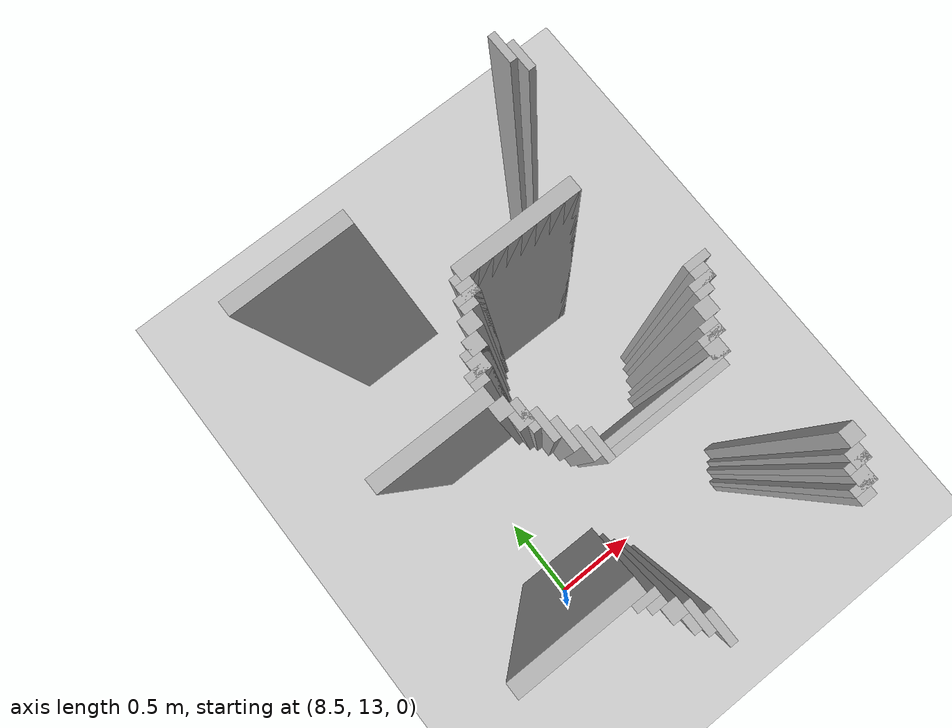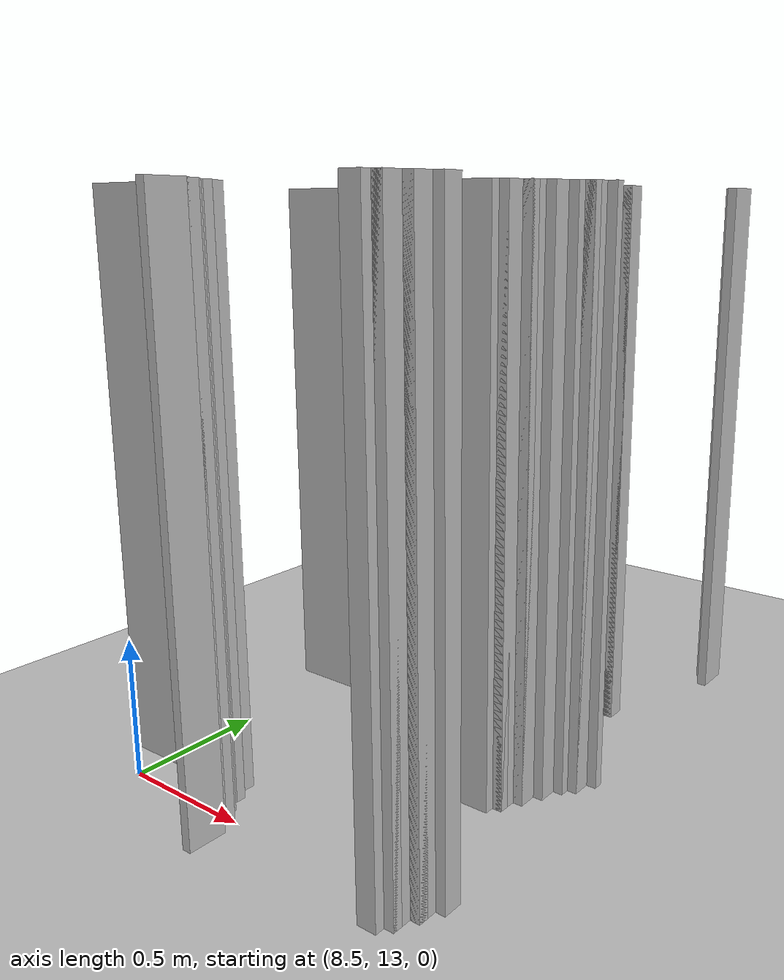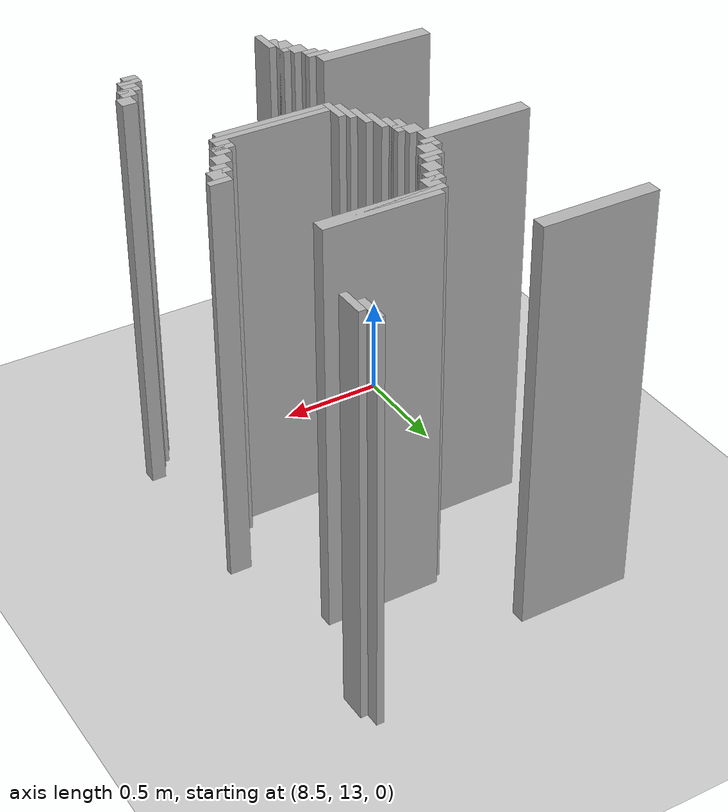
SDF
<sdf version="1.6">
 <world name="slam_world">
  <model name="ground_plane">
   <static>true</static>
   <link name="link">
    <collision name="collision">
     <geometry><plane><normal>0 0 1</normal><size>100 100</size></plane></geometry>
    </collision>
    <visual name="visual">
     <geometry><plane><normal>0 0 1</normal><size>100 100</size></plane></geometry>
     <material>
      <ambient>0.8 0.8 0.8 1</ambient>
      <diffuse>0.8 0.8 0.8 1</diffuse>
      <specular>0.8 0.8 0.8 1</specular>
     </material>
    </visual>
   </link>
  </model>
  <model name="wall_792">
   <static>true</static>
   <pose>9.72737819025522 15.0 1.0 0 0 0</pose>
   <link name="link">
    <collision name="collision">
     <geometry><box><size>0.03480278422273782 0.13921113689095127 2.0</size></box></geometry>
    </collision>
    <visual name="visual">
     <geometry><box><size>0.03480278422273782 0.13921113689095127 2.0</size></box></geometry>
     <material><ambient>0.5 0.5 0.5 1</ambient><diffuse>0.7 0.7 0.7 1</diffuse></material>
    </visual>
   </link>
  </model>
  <model name="wall_813">
   <static>true</static>
   <pose>9.762180974477959 14.930394431554523 1.0 0 0 0</pose>
   <link name="link">
    <collision name="collision">
     <geometry><box><size>0.03480278422273782 0.13921113689095127 2.0</size></box></geometry>
    </collision>
    <visual name="visual">
     <geometry><box><size>0.03480278422273782 0.13921113689095127 2.0</size></box></geometry>
     <material><ambient>0.5 0.5 0.5 1</ambient><diffuse>0.7 0.7 0.7 1</diffuse></material>
    </visual>
   </link>
  </model>
  <model name="wall_851">
   <static>true</static>
   <pose>8.596287703016241 14.825986078886311 1.0 0 0 0</pose>
   <link name="link">
    <collision name="collision">
     <geometry><box><size>0.5568445475638051 0.06960556844547564 2.0</size></box></geometry>
    </collision>
    <visual name="visual">
     <geometry><box><size>0.5568445475638051 0.06960556844547564 2.0</size></box></geometry>
     <material><ambient>0.5 0.5 0.5 1</ambient><diffuse>0.7 0.7 0.7 1</diffuse></material>
    </visual>
   </link>
  </model>
  <model name="wall_971">
   <static>true</static>
   <pose>9.327146171693736 14.408352668213457 1.0 0 0 0</pose>
   <link name="link">
    <collision name="collision">
     <geometry><box><size>0.5568445475638051 0.06960556844547564 2.0</size></box></geometry>
    </collision>
    <visual name="visual">
     <geometry><box><size>0.5568445475638051 0.06960556844547564 2.0</size></box></geometry>
     <material><ambient>0.5 0.5 0.5 1</ambient><diffuse>0.7 0.7 0.7 1</diffuse></material>
    </visual>
   </link>
  </model>
  <model name="wall_985">
   <static>true</static>
   <pose>9.309744779582367 14.390951276102088 1.0 0 0 0</pose>
   <link name="link">
    <collision name="collision">
     <geometry><box><size>0.5916473317865429 0.03480278422273782 2.0</size></box></geometry>
    </collision>
    <visual name="visual">
     <geometry><box><size>0.5916473317865429 0.03480278422273782 2.0</size></box></geometry>
     <material><ambient>0.5 0.5 0.5 1</ambient><diffuse>0.7 0.7 0.7 1</diffuse></material>
    </visual>
   </link>
  </model>
  <model name="wall_1000">
   <static>true</static>
   <pose>9.048723897911833 14.33874709976798 1.0 0 0 0</pose>
   <link name="link">
    <collision name="collision">
     <geometry><box><size>0.06960556844547564 0.06960556844547564 2.0</size></box></geometry>
    </collision>
    <visual name="visual">
     <geometry><box><size>0.06960556844547564 0.06960556844547564 2.0</size></box></geometry>
     <material><ambient>0.5 0.5 0.5 1</ambient><diffuse>0.7 0.7 0.7 1</diffuse></material>
    </visual>
   </link>
  </model>
  <model name="wall_1015">
   <static>true</static>
   <pose>9.031322505800464 14.321345707656612 1.0 0 0 0</pose>
   <link name="link">
    <collision name="collision">
     <geometry><box><size>0.10440835266821345 0.03480278422273782 2.0</size></box></geometry>
    </collision>
    <visual name="visual">
     <geometry><box><size>0.10440835266821345 0.03480278422273782 2.0</size></box></geometry>
     <material><ambient>0.5 0.5 0.5 1</ambient><diffuse>0.7 0.7 0.7 1</diffuse></material>
    </visual>
   </link>
  </model>
  <model name="wall_1027">
   <static>true</static>
   <pose>9.013921113689095 14.286542923433874 1.0 0 0 0</pose>
   <link name="link">
    <collision name="collision">
     <geometry><box><size>0.06960556844547564 0.03480278422273782 2.0</size></box></geometry>
    </collision>
    <visual name="visual">
     <geometry><box><size>0.06960556844547564 0.03480278422273782 2.0</size></box></geometry>
     <material><ambient>0.5 0.5 0.5 1</ambient><diffuse>0.7 0.7 0.7 1</diffuse></material>
    </visual>
   </link>
  </model>
  <model name="wall_1039">
   <static>true</static>
   <pose>8.979118329466356 14.234338747099768 1.0 0 0 0</pose>
   <link name="link">
    <collision name="collision">
     <geometry><box><size>0.06960556844547564 0.06960556844547564 2.0</size></box></geometry>
    </collision>
    <visual name="visual">
     <geometry><box><size>0.06960556844547564 0.06960556844547564 2.0</size></box></geometry>
     <material><ambient>0.5 0.5 0.5 1</ambient><diffuse>0.7 0.7 0.7 1</diffuse></material>
    </visual>
   </link>
  </model>
  <model name="wall_1054">
   <static>true</static>
   <pose>8.944315545243619 14.164733178654291 1.0 0 0 0</pose>
   <link name="link">
    <collision name="collision">
     <geometry><box><size>0.06960556844547564 0.06960556844547564 2.0</size></box></geometry>
    </collision>
    <visual name="visual">
     <geometry><box><size>0.06960556844547564 0.06960556844547564 2.0</size></box></geometry>
     <material><ambient>0.5 0.5 0.5 1</ambient><diffuse>0.7 0.7 0.7 1</diffuse></material>
    </visual>
   </link>
  </model>
  <model name="wall_1069">
   <static>true</static>
   <pose>8.92691415313225 14.147331786542923 1.0 0 0 0</pose>
   <link name="link">
    <collision name="collision">
     <geometry><box><size>0.10440835266821345 0.03480278422273782 2.0</size></box></geometry>
    </collision>
    <visual name="visual">
     <geometry><box><size>0.10440835266821345 0.03480278422273782 2.0</size></box></geometry>
     <material><ambient>0.5 0.5 0.5 1</ambient><diffuse>0.7 0.7 0.7 1</diffuse></material>
    </visual>
   </link>
  </model>
  <model name="wall_1080">
   <static>true</static>
   <pose>8.909512761020881 14.095127610208817 1.0 0 0 0</pose>
   <link name="link">
    <collision name="collision">
     <geometry><box><size>0.06960556844547564 0.06960556844547564 2.0</size></box></geometry>
    </collision>
    <visual name="visual">
     <geometry><box><size>0.06960556844547564 0.06960556844547564 2.0</size></box></geometry>
     <material><ambient>0.5 0.5 0.5 1</ambient><diffuse>0.7 0.7 0.7 1</diffuse></material>
    </visual>
   </link>
  </model>
  <model name="wall_1092">
   <static>true</static>
   <pose>8.892111368909513 14.077726218097448 1.0 0 0 0</pose>
   <link name="link">
    <collision name="collision">
     <geometry><box><size>0.10440835266821345 0.03480278422273782 2.0</size></box></geometry>
    </collision>
    <visual name="visual">
     <geometry><box><size>0.10440835266821345 0.03480278422273782 2.0</size></box></geometry>
     <material><ambient>0.5 0.5 0.5 1</ambient><diffuse>0.7 0.7 0.7 1</diffuse></material>
    </visual>
   </link>
  </model>
  <model name="wall_1103">
   <static>true</static>
   <pose>8.874709976798144 14.042923433874709 1.0 0 0 0</pose>
   <link name="link">
    <collision name="collision">
     <geometry><box><size>0.06960556844547564 0.03480278422273782 2.0</size></box></geometry>
    </collision>
    <visual name="visual">
     <geometry><box><size>0.06960556844547564 0.03480278422273782 2.0</size></box></geometry>
     <material><ambient>0.5 0.5 0.5 1</ambient><diffuse>0.7 0.7 0.7 1</diffuse></material>
    </visual>
   </link>
  </model>
  <model name="wall_1113">
   <static>true</static>
   <pose>8.61368909512761 13.990719257540603 1.0 0 0 0</pose>
   <link name="link">
    <collision name="collision">
     <geometry><box><size>0.5220417633410672 0.06960556844547564 2.0</size></box></geometry>
    </collision>
    <visual name="visual">
     <geometry><box><size>0.5220417633410672 0.06960556844547564 2.0</size></box></geometry>
     <material><ambient>0.5 0.5 0.5 1</ambient><diffuse>0.7 0.7 0.7 1</diffuse></material>
    </visual>
   </link>
  </model>
  <model name="wall_1129">
   <static>true</static>
   <pose>8.874709976798144 13.921113689095128 1.0 0 0 0</pose>
   <link name="link">
    <collision name="collision">
     <geometry><box><size>0.06960556844547564 0.06960556844547564 2.0</size></box></geometry>
    </collision>
    <visual name="visual">
     <geometry><box><size>0.06960556844547564 0.06960556844547564 2.0</size></box></geometry>
     <material><ambient>0.5 0.5 0.5 1</ambient><diffuse>0.7 0.7 0.7 1</diffuse></material>
    </visual>
   </link>
  </model>
  <model name="wall_1144">
   <static>true</static>
   <pose>8.92691415313225 13.851508120649651 1.0 0 0 0</pose>
   <link name="link">
    <collision name="collision">
     <geometry><box><size>0.03480278422273782 0.13921113689095127 2.0</size></box></geometry>
    </collision>
    <visual name="visual">
     <geometry><box><size>0.03480278422273782 0.13921113689095127 2.0</size></box></geometry>
     <material><ambient>0.5 0.5 0.5 1</ambient><diffuse>0.7 0.7 0.7 1</diffuse></material>
    </visual>
   </link>
  </model>
  <model name="wall_1145">
   <static>true</static>
   <pose>9.762180974477959 13.903712296983759 1.0 0 0 0</pose>
   <link name="link">
    <collision name="collision">
     <geometry><box><size>0.10440835266821345 0.03480278422273782 2.0</size></box></geometry>
    </collision>
    <visual name="visual">
     <geometry><box><size>0.10440835266821345 0.03480278422273782 2.0</size></box></geometry>
     <material><ambient>0.5 0.5 0.5 1</ambient><diffuse>0.7 0.7 0.7 1</diffuse></material>
    </visual>
   </link>
  </model>
  <model name="wall_1159">
   <static>true</static>
   <pose>8.909512761020881 13.851508120649651 1.0 0 0 0</pose>
   <link name="link">
    <collision name="collision">
     <geometry><box><size>0.06960556844547564 0.06960556844547564 2.0</size></box></geometry>
    </collision>
    <visual name="visual">
     <geometry><box><size>0.06960556844547564 0.06960556844547564 2.0</size></box></geometry>
     <material><ambient>0.5 0.5 0.5 1</ambient><diffuse>0.7 0.7 0.7 1</diffuse></material>
    </visual>
   </link>
  </model>
  <model name="wall_1160">
   <static>true</static>
   <pose>9.744779582366588 13.851508120649651 1.0 0 0 0</pose>
   <link name="link">
    <collision name="collision">
     <geometry><box><size>0.06960556844547564 0.06960556844547564 2.0</size></box></geometry>
    </collision>
    <visual name="visual">
     <geometry><box><size>0.06960556844547564 0.06960556844547564 2.0</size></box></geometry>
     <material><ambient>0.5 0.5 0.5 1</ambient><diffuse>0.7 0.7 0.7 1</diffuse></material>
    </visual>
   </link>
  </model>
  <model name="wall_1174">
   <static>true</static>
   <pose>8.961716937354987 13.781902552204176 1.0 0 0 0</pose>
   <link name="link">
    <collision name="collision">
     <geometry><box><size>0.03480278422273782 0.13921113689095127 2.0</size></box></geometry>
    </collision>
    <visual name="visual">
     <geometry><box><size>0.03480278422273782 0.13921113689095127 2.0</size></box></geometry>
     <material><ambient>0.5 0.5 0.5 1</ambient><diffuse>0.7 0.7 0.7 1</diffuse></material>
    </visual>
   </link>
  </model>
  <model name="wall_1175">
   <static>true</static>
   <pose>9.72737819025522 13.834106728538282 1.0 0 0 0</pose>
   <link name="link">
    <collision name="collision">
     <geometry><box><size>0.10440835266821345 0.03480278422273782 2.0</size></box></geometry>
    </collision>
    <visual name="visual">
     <geometry><box><size>0.10440835266821345 0.03480278422273782 2.0</size></box></geometry>
     <material><ambient>0.5 0.5 0.5 1</ambient><diffuse>0.7 0.7 0.7 1</diffuse></material>
    </visual>
   </link>
  </model>
  <model name="wall_1184">
   <static>true</static>
   <pose>9.70997679814385 13.799303944315545 1.0 0 0 0</pose>
   <link name="link">
    <collision name="collision">
     <geometry><box><size>0.06960556844547564 0.03480278422273782 2.0</size></box></geometry>
    </collision>
    <visual name="visual">
     <geometry><box><size>0.06960556844547564 0.03480278422273782 2.0</size></box></geometry>
     <material><ambient>0.5 0.5 0.5 1</ambient><diffuse>0.7 0.7 0.7 1</diffuse></material>
    </visual>
   </link>
  </model>
  <model name="wall_1196">
   <static>true</static>
   <pose>8.996519721577727 13.7122969837587 1.0 0 0 0</pose>
   <link name="link">
    <collision name="collision">
     <geometry><box><size>0.03480278422273782 0.13921113689095127 2.0</size></box></geometry>
    </collision>
    <visual name="visual">
     <geometry><box><size>0.03480278422273782 0.13921113689095127 2.0</size></box></geometry>
     <material><ambient>0.5 0.5 0.5 1</ambient><diffuse>0.7 0.7 0.7 1</diffuse></material>
    </visual>
   </link>
  </model>
  <model name="wall_1197">
   <static>true</static>
   <pose>9.675174013921113 13.747099767981437 1.0 0 0 0</pose>
   <link name="link">
    <collision name="collision">
     <geometry><box><size>0.06960556844547564 0.06960556844547564 2.0</size></box></geometry>
    </collision>
    <visual name="visual">
     <geometry><box><size>0.06960556844547564 0.06960556844547564 2.0</size></box></geometry>
     <material><ambient>0.5 0.5 0.5 1</ambient><diffuse>0.7 0.7 0.7 1</diffuse></material>
    </visual>
   </link>
  </model>
  <model name="wall_1211">
   <static>true</static>
   <pose>9.031322505800464 13.642691415313225 1.0 0 0 0</pose>
   <link name="link">
    <collision name="collision">
     <geometry><box><size>0.03480278422273782 0.13921113689095127 2.0</size></box></geometry>
    </collision>
    <visual name="visual">
     <geometry><box><size>0.03480278422273782 0.13921113689095127 2.0</size></box></geometry>
     <material><ambient>0.5 0.5 0.5 1</ambient><diffuse>0.7 0.7 0.7 1</diffuse></material>
    </visual>
   </link>
  </model>
  <model name="wall_1212">
   <static>true</static>
   <pose>9.640371229698376 13.677494199535962 1.0 0 0 0</pose>
   <link name="link">
    <collision name="collision">
     <geometry><box><size>0.06960556844547564 0.06960556844547564 2.0</size></box></geometry>
    </collision>
    <visual name="visual">
     <geometry><box><size>0.06960556844547564 0.06960556844547564 2.0</size></box></geometry>
     <material><ambient>0.5 0.5 0.5 1</ambient><diffuse>0.7 0.7 0.7 1</diffuse></material>
    </visual>
   </link>
  </model>
  <model name="wall_1226">
   <static>true</static>
   <pose>9.066125290023201 13.607888631090487 1.0 0 0 0</pose>
   <link name="link">
    <collision name="collision">
     <geometry><box><size>0.03480278422273782 0.13921113689095127 2.0</size></box></geometry>
    </collision>
    <visual name="visual">
     <geometry><box><size>0.03480278422273782 0.13921113689095127 2.0</size></box></geometry>
     <material><ambient>0.5 0.5 0.5 1</ambient><diffuse>0.7 0.7 0.7 1</diffuse></material>
    </visual>
   </link>
  </model>
  <model name="wall_1227">
   <static>true</static>
   <pose>9.622969837587007 13.660092807424594 1.0 0 0 0</pose>
   <link name="link">
    <collision name="collision">
     <geometry><box><size>0.10440835266821345 0.03480278422273782 2.0</size></box></geometry>
    </collision>
    <visual name="visual">
     <geometry><box><size>0.10440835266821345 0.03480278422273782 2.0</size></box></geometry>
     <material><ambient>0.5 0.5 0.5 1</ambient><diffuse>0.7 0.7 0.7 1</diffuse></material>
    </visual>
   </link>
  </model>
  <model name="wall_1236">
   <static>true</static>
   <pose>9.605568445475638 13.607888631090487 1.0 0 0 0</pose>
   <link name="link">
    <collision name="collision">
     <geometry><box><size>0.06960556844547564 0.06960556844547564 2.0</size></box></geometry>
    </collision>
    <visual name="visual">
     <geometry><box><size>0.06960556844547564 0.06960556844547564 2.0</size></box></geometry>
     <material><ambient>0.5 0.5 0.5 1</ambient><diffuse>0.7 0.7 0.7 1</diffuse></material>
    </visual>
   </link>
  </model>
  <model name="wall_1246">
   <static>true</static>
   <pose>9.361948955916473 13.590487238979117 1.0 0 0 0</pose>
   <link name="link">
    <collision name="collision">
     <geometry><box><size>0.5568445475638051 0.03480278422273782 2.0</size></box></geometry>
    </collision>
    <visual name="visual">
     <geometry><box><size>0.5568445475638051 0.03480278422273782 2.0</size></box></geometry>
     <material><ambient>0.5 0.5 0.5 1</ambient><diffuse>0.7 0.7 0.7 1</diffuse></material>
    </visual>
   </link>
  </model>
  <model name="wall_1255">
   <static>true</static>
   <pose>9.344547563805104 13.55568445475638 1.0 0 0 0</pose>
   <link name="link">
    <collision name="collision">
     <geometry><box><size>0.5220417633410672 0.03480278422273782 2.0</size></box></geometry>
    </collision>
    <visual name="visual">
     <geometry><box><size>0.5220417633410672 0.03480278422273782 2.0</size></box></geometry>
     <material><ambient>0.5 0.5 0.5 1</ambient><diffuse>0.7 0.7 0.7 1</diffuse></material>
    </visual>
   </link>
  </model>
  <model name="wall_1360">
   <static>true</static>
   <pose>8.596287703016241 13.155452436194896 1.0 0 0 0</pose>
   <link name="link">
    <collision name="collision">
     <geometry><box><size>0.5568445475638051 0.06960556844547564 2.0</size></box></geometry>
    </collision>
    <visual name="visual">
     <geometry><box><size>0.5568445475638051 0.06960556844547564 2.0</size></box></geometry>
     <material><ambient>0.5 0.5 0.5 1</ambient><diffuse>0.7 0.7 0.7 1</diffuse></material>
    </visual>
   </link>
  </model>
  <model name="wall_1379">
   <static>true</static>
   <pose>8.857308584686775 13.103248259860788 1.0 0 0 0</pose>
   <link name="link">
    <collision name="collision">
     <geometry><box><size>0.10440835266821345 0.03480278422273782 2.0</size></box></geometry>
    </collision>
    <visual name="visual">
     <geometry><box><size>0.10440835266821345 0.03480278422273782 2.0</size></box></geometry>
     <material><ambient>0.5 0.5 0.5 1</ambient><diffuse>0.7 0.7 0.7 1</diffuse></material>
    </visual>
   </link>
  </model>
  <model name="wall_1380">
   <static>true</static>
   <pose>9.779582366589327 13.085846867749419 1.0 0 0 0</pose>
   <link name="link">
    <collision name="collision">
     <geometry><box><size>0.06960556844547564 0.06960556844547564 2.0</size></box></geometry>
    </collision>
    <visual name="visual">
     <geometry><box><size>0.06960556844547564 0.06960556844547564 2.0</size></box></geometry>
     <material><ambient>0.5 0.5 0.5 1</ambient><diffuse>0.7 0.7 0.7 1</diffuse></material>
    </visual>
   </link>
  </model>
  <model name="wall_1393">
   <static>true</static>
   <pose>8.874709976798144 13.06844547563805 1.0 0 0 0</pose>
   <link name="link">
    <collision name="collision">
     <geometry><box><size>0.06960556844547564 0.03480278422273782 2.0</size></box></geometry>
    </collision>
    <visual name="visual">
     <geometry><box><size>0.06960556844547564 0.03480278422273782 2.0</size></box></geometry>
     <material><ambient>0.5 0.5 0.5 1</ambient><diffuse>0.7 0.7 0.7 1</diffuse></material>
    </visual>
   </link>
  </model>
  <model name="wall_1406">
   <static>true</static>
   <pose>8.909512761020881 13.016241299303944 1.0 0 0 0</pose>
   <link name="link">
    <collision name="collision">
     <geometry><box><size>0.06960556844547564 0.06960556844547564 2.0</size></box></geometry>
    </collision>
    <visual name="visual">
     <geometry><box><size>0.06960556844547564 0.06960556844547564 2.0</size></box></geometry>
     <material><ambient>0.5 0.5 0.5 1</ambient><diffuse>0.7 0.7 0.7 1</diffuse></material>
    </visual>
   </link>
  </model>
  <model name="wall_1407">
   <static>true</static>
   <pose>9.744779582366588 13.016241299303944 1.0 0 0 0</pose>
   <link name="link">
    <collision name="collision">
     <geometry><box><size>0.06960556844547564 0.06960556844547564 2.0</size></box></geometry>
    </collision>
    <visual name="visual">
     <geometry><box><size>0.06960556844547564 0.06960556844547564 2.0</size></box></geometry>
     <material><ambient>0.5 0.5 0.5 1</ambient><diffuse>0.7 0.7 0.7 1</diffuse></material>
    </visual>
   </link>
  </model>
  <model name="wall_1421">
   <static>true</static>
   <pose>8.961716937354987 12.946635730858468 1.0 0 0 0</pose>
   <link name="link">
    <collision name="collision">
     <geometry><box><size>0.03480278422273782 0.13921113689095127 2.0</size></box></geometry>
    </collision>
    <visual name="visual">
     <geometry><box><size>0.03480278422273782 0.13921113689095127 2.0</size></box></geometry>
     <material><ambient>0.5 0.5 0.5 1</ambient><diffuse>0.7 0.7 0.7 1</diffuse></material>
    </visual>
   </link>
  </model>
  <model name="wall_1422">
   <static>true</static>
   <pose>9.72737819025522 12.998839907192576 1.0 0 0 0</pose>
   <link name="link">
    <collision name="collision">
     <geometry><box><size>0.10440835266821345 0.03480278422273782 2.0</size></box></geometry>
    </collision>
    <visual name="visual">
     <geometry><box><size>0.10440835266821345 0.03480278422273782 2.0</size></box></geometry>
     <material><ambient>0.5 0.5 0.5 1</ambient><diffuse>0.7 0.7 0.7 1</diffuse></material>
    </visual>
   </link>
  </model>
  <model name="wall_1436">
   <static>true</static>
   <pose>8.944315545243619 12.946635730858468 1.0 0 0 0</pose>
   <link name="link">
    <collision name="collision">
     <geometry><box><size>0.06960556844547564 0.06960556844547564 2.0</size></box></geometry>
    </collision>
    <visual name="visual">
     <geometry><box><size>0.06960556844547564 0.06960556844547564 2.0</size></box></geometry>
     <material><ambient>0.5 0.5 0.5 1</ambient><diffuse>0.7 0.7 0.7 1</diffuse></material>
    </visual>
   </link>
  </model>
  <model name="wall_1437">
   <static>true</static>
   <pose>9.70997679814385 12.946635730858468 1.0 0 0 0</pose>
   <link name="link">
    <collision name="collision">
     <geometry><box><size>0.06960556844547564 0.06960556844547564 2.0</size></box></geometry>
    </collision>
    <visual name="visual">
     <geometry><box><size>0.06960556844547564 0.06960556844547564 2.0</size></box></geometry>
     <material><ambient>0.5 0.5 0.5 1</ambient><diffuse>0.7 0.7 0.7 1</diffuse></material>
    </visual>
   </link>
  </model>
  <model name="wall_1451">
   <static>true</static>
   <pose>8.996519721577727 12.877030162412993 1.0 0 0 0</pose>
   <link name="link">
    <collision name="collision">
     <geometry><box><size>0.03480278422273782 0.13921113689095127 2.0</size></box></geometry>
    </collision>
    <visual name="visual">
     <geometry><box><size>0.03480278422273782 0.13921113689095127 2.0</size></box></geometry>
     <material><ambient>0.5 0.5 0.5 1</ambient><diffuse>0.7 0.7 0.7 1</diffuse></material>
    </visual>
   </link>
  </model>
  <model name="wall_1452">
   <static>true</static>
   <pose>9.692575406032482 12.929234338747099 1.0 0 0 0</pose>
   <link name="link">
    <collision name="collision">
     <geometry><box><size>0.10440835266821345 0.03480278422273782 2.0</size></box></geometry>
    </collision>
    <visual name="visual">
     <geometry><box><size>0.10440835266821345 0.03480278422273782 2.0</size></box></geometry>
     <material><ambient>0.5 0.5 0.5 1</ambient><diffuse>0.7 0.7 0.7 1</diffuse></material>
    </visual>
   </link>
  </model>
  <model name="wall_1464">
   <static>true</static>
   <pose>9.675174013921113 12.894431554524362 1.0 0 0 0</pose>
   <link name="link">
    <collision name="collision">
     <geometry><box><size>0.06960556844547564 0.03480278422273782 2.0</size></box></geometry>
    </collision>
    <visual name="visual">
     <geometry><box><size>0.06960556844547564 0.03480278422273782 2.0</size></box></geometry>
     <material><ambient>0.5 0.5 0.5 1</ambient><diffuse>0.7 0.7 0.7 1</diffuse></material>
    </visual>
   </link>
  </model>
 </world>
</sdf>
